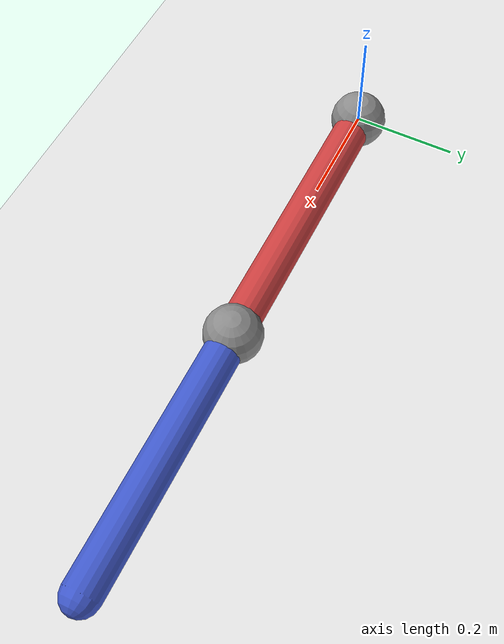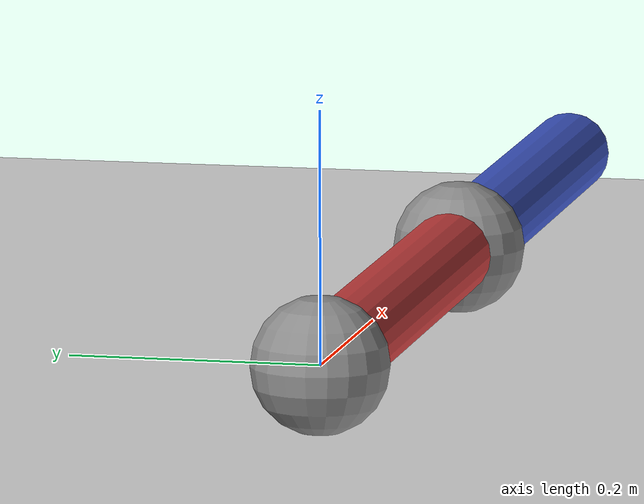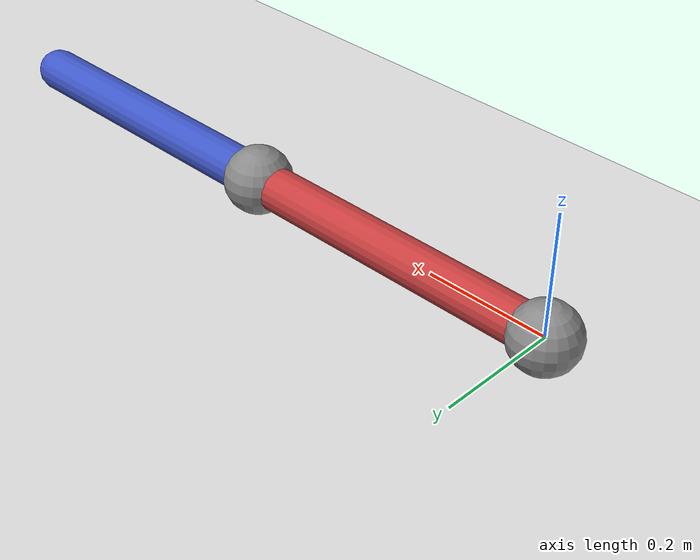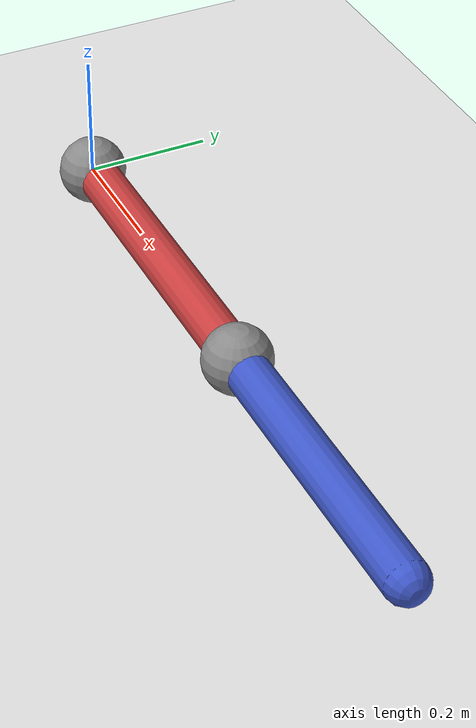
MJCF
<mujoco model="two_joint_arm">
  <compiler angle="radian" autolimits="true"/>
  <option timestep="0.02" gravity="0 0 -9.81" integrator="Euler"/>

  <default>
    <joint damping="0.4" armature="0.02"/>
    <!-- Lighter links => faster, more controllable arm, easier to learn. -->
    <geom friction="0.6 0.1 0.1" density="300"/>
    <motor ctrllimited="true" ctrlrange="-1 1" forcerange="-1 1"/>
  </default>

  <asset>
    <texture name="tex" type="2d" builtin="checker" rgb1="0.18 0.18 0.18" rgb2="0.28 0.28 0.28" width="256" height="256"/>
    <material name="floor" texture="tex" texrepeat="4 4" reflectance="0.3"/>
  </asset>

  <worldbody>
    <light name="light" pos="0 -1 4" dir="0 0.3 -1" diffuse="0.9 0.9 0.9" specular="0.1 0.1 0.1"/>
    <camera name="cam_xy" pos="0 -2.2 2.2" xyaxes="1 0 0 0 1 1" fovy="50"/>
    <!-- Floor sits well below the arm's shoulder/elbow balls (r=0.055) so the
         planar arm (z=0) never touches it and stays free to swing. -->
    <geom name="floor" type="plane" size="4 4 0.1" pos="0 0 -0.12" rgba="0.9 0.9 0.9 1" material="floor"/>

    <!-- Link 1: shoulder joint, lies along +x -->
    <body name="link1" pos="0 0 0">
      <joint name="joint1" type="hinge" axis="0 0 1" pos="0 0 0"/>
      <geom name="link1_geom" type="capsule" fromto="0 0 0 0.55 0 0" size="0.035" rgba="0.80 0.25 0.25 1"/>
      <geom name="link1_base" type="sphere" pos="0 0 0" size="0.055" rgba="0.55 0.55 0.55 1"/>
      <site name="shoulder" pos="0 0 0"/>

      <body name="link2" pos="0.55 0 0">
        <joint name="joint2" type="hinge" axis="0 0 1"/>
        <geom name="link2_geom" type="capsule" fromto="0 0 0 0.5 0 0" size="0.035" rgba="0.25 0.35 0.80 1"/>
        <geom name="link2_elbow" type="sphere" pos="0 0 0" size="0.055" rgba="0.55 0.55 0.55 1"/>
        <site name="tip" pos="0.5 0 0"/>
      </body>
    </body>

    <!-- Kinematic target (mocap). No mass, no contact. -->
    <body name="target" mocap="true">
      <geom name="target_geom" type="sphere" size="0.05" rgba="0.10 0.75 0.25 1" contype="0" conaffinity="0"/>
      <site name="target_site" pos="0 0 0"/>
    </body>
  </worldbody>

  <actuator>
    <motor name="act1" joint="joint1" gear="6.0"/>
    <motor name="act2" joint="joint2" gear="4.0"/>
  </actuator>

  <sensor>
    <jointpos name="jpos1" joint="joint1"/>
    <jointpos name="jpos2" joint="joint2"/>
    <jointvel name="jvel1" joint="joint1"/>
    <jointvel name="jvel2" joint="joint2"/>
  </sensor>
</mujoco>
